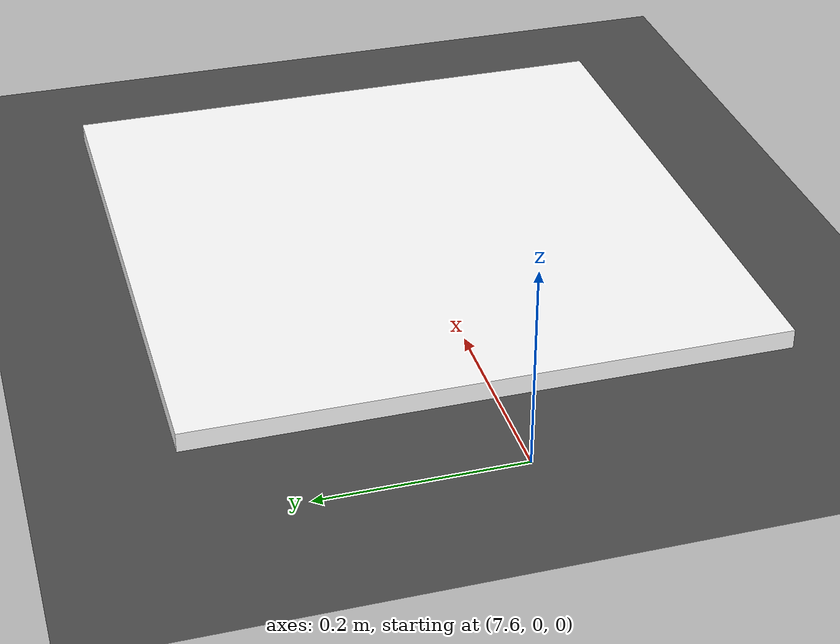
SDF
<?xml version="1.0" ?>
<sdf version="1.9">
  <world name="inspect_aruco">
    <physics name="1ms" type="ignored">
      <max_step_size>0.001</max_step_size>
      <real_time_factor>1.0</real_time_factor>
    </physics>
    <plugin filename="gz-sim-physics-system" name="gz::sim::systems::Physics"/>
    <plugin filename="gz-sim-user-commands-system" name="gz::sim::systems::UserCommands"/>
    <plugin filename="gz-sim-scene-broadcaster-system" name="gz::sim::systems::SceneBroadcaster"/>
    <light type="directional" name="sun">
      <cast_shadows>true</cast_shadows>
      <pose>0 0 10 0 0 0</pose>
      <diffuse>0.8 0.8 0.8 1</diffuse>
    </light>
    <model name="ground_plane">
      <static>true</static>
      <link name="link">
        <collision name="collision">
          <geometry><plane><normal>0 0 1</normal></plane></geometry>
        </collision>
        <visual name="visual">
          <geometry><plane><size>100 100</size></plane></geometry>
          <material>
            <ambient>0.3 0.3 0.3 1</ambient>
          </material>
        </visual>
      </link>
    </model>
    <!-- ArUco marker pad at mission endpoint (map ENU ~8,0,0) -->
    <model name="aruco_marker_0">
      <static>true</static>
      <pose>8 0 0.01 0 0 0</pose>
      <link name="link">
        <visual name="visual">
          <geometry><box><size>0.6 0.6 0.02</size></box></geometry>
          <material>
            <ambient>1 1 1 1</ambient>
            <diffuse>1 1 1 1</diffuse>
          </material>
        </visual>
      </link>
    </model>
  </world>
</sdf>
